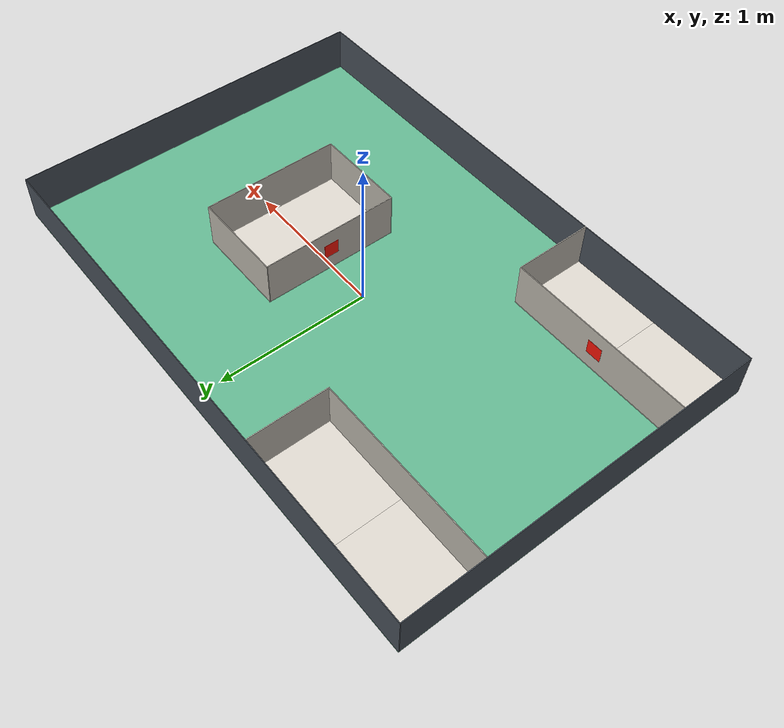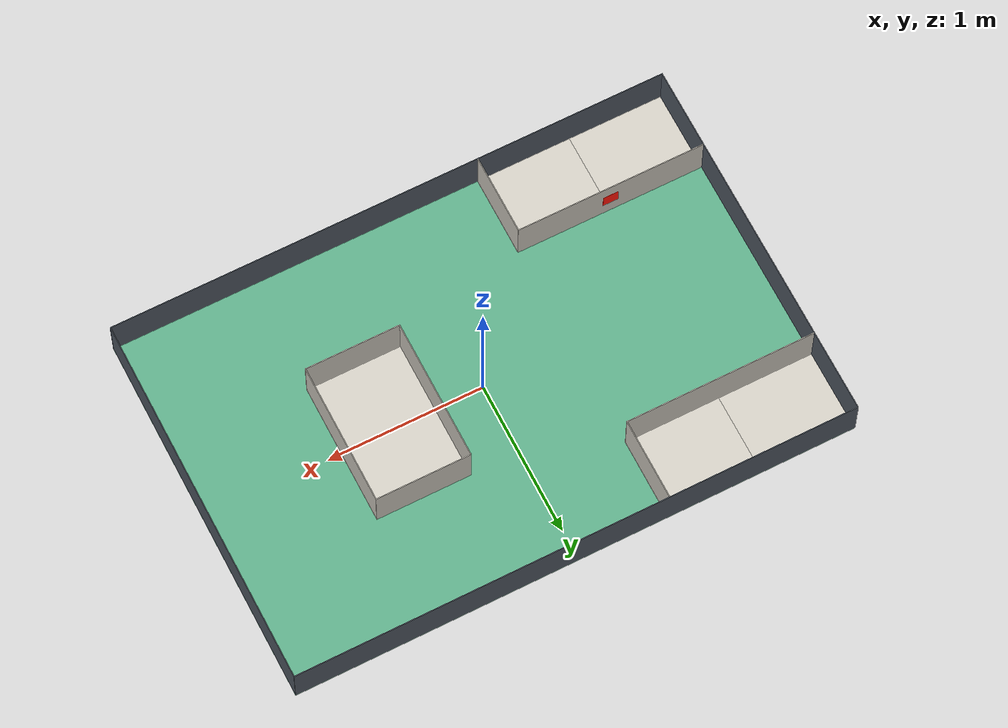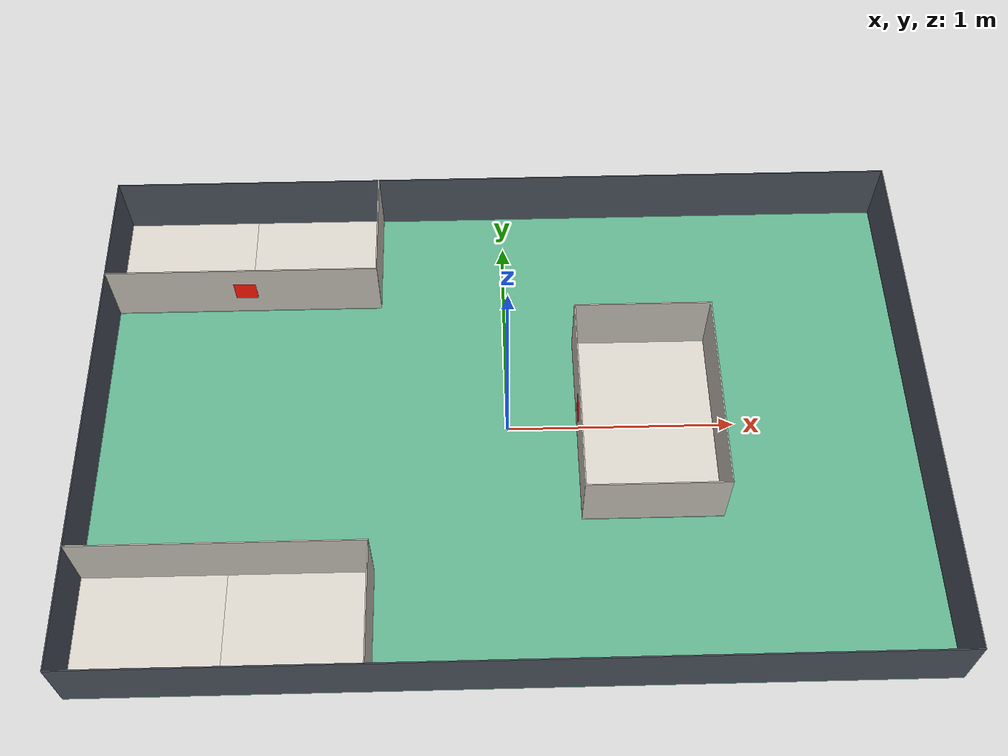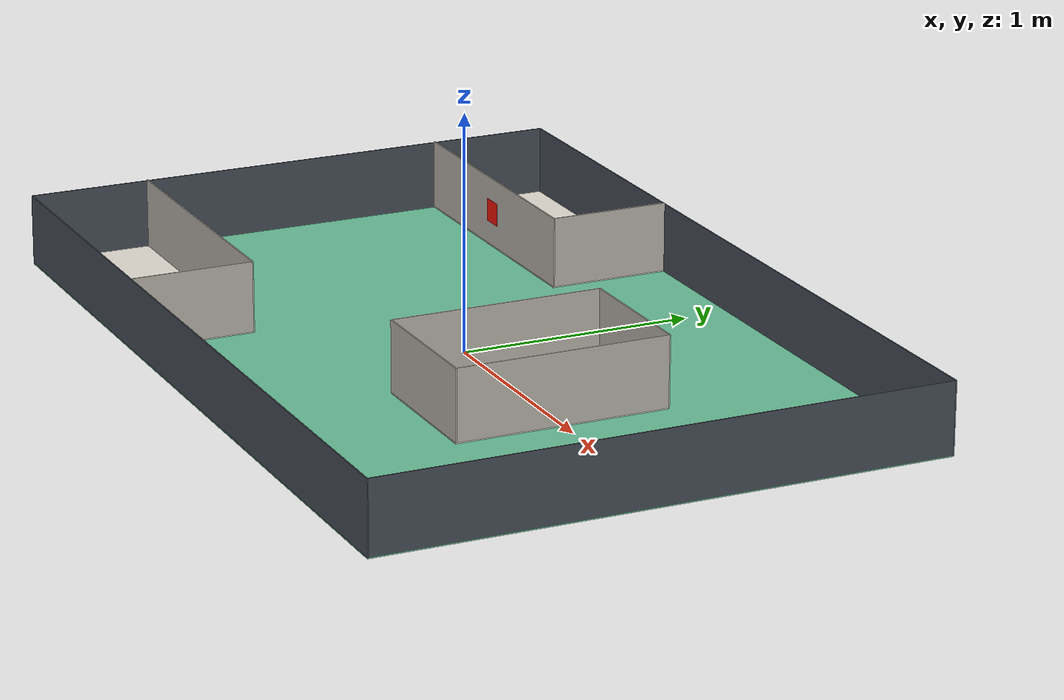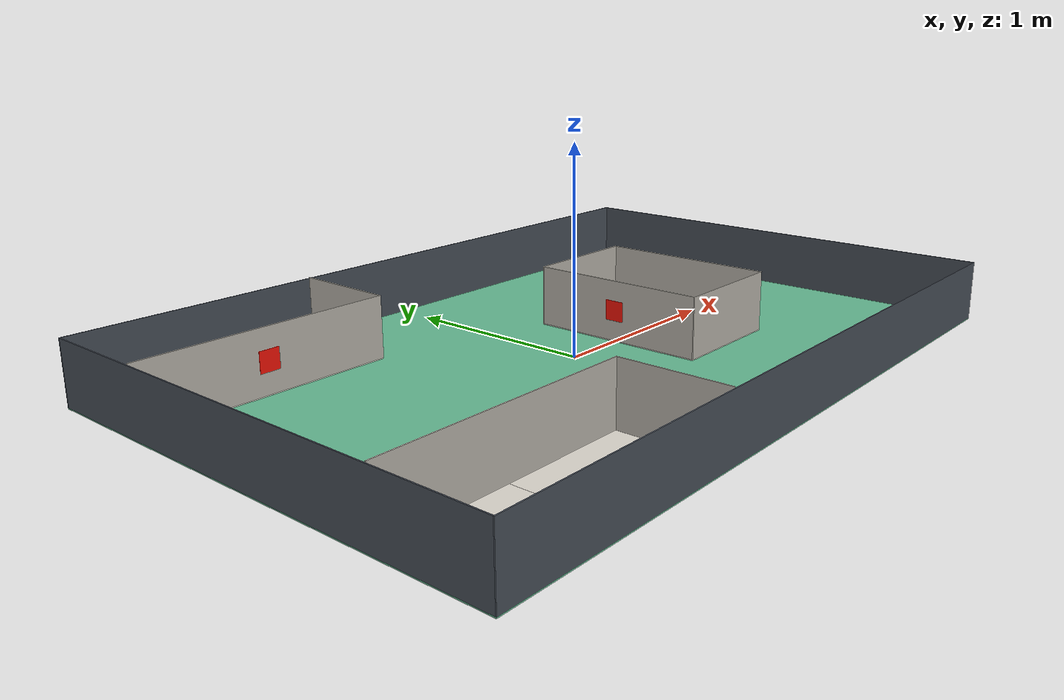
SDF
<?xml version='1.0' encoding='utf-8'?>
<sdf version="1.8">
  <world name="facility_map_with_heat_sources">
    <physics name="1ms" type="ignored">
      <max_step_size>0.001</max_step_size>
      <real_time_factor>1.0</real_time_factor>
    </physics>
    <scene>
      <ambient>0.55 0.55 0.55 1</ambient>
      <background>0.72 0.78 0.84 1</background>
      <shadows>true</shadows>
    </scene>
    <atmosphere type="adiabatic">
      <temperature>298.15</temperature>
      <temperature_gradient>-0.0065</temperature_gradient>
    </atmosphere>
    <plugin filename="gz-sim-physics-system" name="gz::sim::systems::Physics" />
    <plugin filename="gz-sim-user-commands-system" name="gz::sim::systems::UserCommands" />
    <plugin filename="gz-sim-scene-broadcaster-system" name="gz::sim::systems::SceneBroadcaster" />
    <plugin filename="gz-sim-sensors-system" name="gz::sim::systems::Sensors">
      <render_engine>ogre2</render_engine>
    </plugin>
    <light name="sun" type="directional">
      <pose>0 0 5 0 0 0</pose>
      <diffuse>0.9 0.9 0.9 1</diffuse>
      <specular>0.2 0.2 0.2 1</specular>
      <direction>-0.45 0.25 -0.86</direction>
      <cast_shadows>true</cast_shadows>
    </light>
    <model name="facility_layout_with_heat_sources">
      <static>true</static>
      <link name="layout_link">
        <collision name="floor_plate_collision">
          <pose>0.000000 0.000000 -0.002500 0 0 0</pose>
          <geometry>
            <box>
              <size>3.600000 2.400000 0.005000</size>
            </box>
          </geometry>
        </collision>
        <visual name="floor_plate_visual">
          <pose>0.000000 0.000000 -0.002500 0 0 0</pose>
          <geometry>
            <box>
              <size>3.600000 2.400000 0.005000</size>
            </box>
          </geometry>
          <material>
            <ambient>0.32 0.62 0.48 1</ambient>
            <diffuse>0.40 0.73 0.58 1</diffuse>
            <specular>0.08 0.08 0.08 1</specular>
          </material>
          <cast_shadows>true</cast_shadows>
        </visual>
        <collision name="floor_north_wall_collision">
          <pose>0.000000 1.197500 0.150000 0 0 0</pose>
          <geometry>
            <box>
              <size>3.600000 0.005000 0.300000</size>
            </box>
          </geometry>
        </collision>
        <visual name="floor_north_wall_visual">
          <pose>0.000000 1.197500 0.150000 0 0 0</pose>
          <geometry>
            <box>
              <size>3.600000 0.005000 0.300000</size>
            </box>
          </geometry>
          <material>
            <ambient>0.18 0.20 0.23 1</ambient>
            <diffuse>0.29 0.32 0.36 1</diffuse>
            <specular>0.08 0.08 0.08 1</specular>
          </material>
          <cast_shadows>true</cast_shadows>
        </visual>
        <collision name="floor_south_wall_collision">
          <pose>0.000000 -1.197500 0.150000 0 0 0</pose>
          <geometry>
            <box>
              <size>3.600000 0.005000 0.300000</size>
            </box>
          </geometry>
        </collision>
        <visual name="floor_south_wall_visual">
          <pose>0.000000 -1.197500 0.150000 0 0 0</pose>
          <geometry>
            <box>
              <size>3.600000 0.005000 0.300000</size>
            </box>
          </geometry>
          <material>
            <ambient>0.18 0.20 0.23 1</ambient>
            <diffuse>0.29 0.32 0.36 1</diffuse>
            <specular>0.08 0.08 0.08 1</specular>
          </material>
          <cast_shadows>true</cast_shadows>
        </visual>
        <collision name="floor_east_wall_collision">
          <pose>1.797500 0.000000 0.150000 0 0 0</pose>
          <geometry>
            <box>
              <size>0.005000 2.390000 0.300000</size>
            </box>
          </geometry>
        </collision>
        <visual name="floor_east_wall_visual">
          <pose>1.797500 0.000000 0.150000 0 0 0</pose>
          <geometry>
            <box>
              <size>0.005000 2.390000 0.300000</size>
            </box>
          </geometry>
          <material>
            <ambient>0.18 0.20 0.23 1</ambient>
            <diffuse>0.29 0.32 0.36 1</diffuse>
            <specular>0.08 0.08 0.08 1</specular>
          </material>
          <cast_shadows>true</cast_shadows>
        </visual>
        <collision name="floor_west_wall_collision">
          <pose>-1.797500 0.000000 0.150000 0 0 0</pose>
          <geometry>
            <box>
              <size>0.005000 2.390000 0.300000</size>
            </box>
          </geometry>
        </collision>
        <visual name="floor_west_wall_visual">
          <pose>-1.797500 0.000000 0.150000 0 0 0</pose>
          <geometry>
            <box>
              <size>0.005000 2.390000 0.300000</size>
            </box>
          </geometry>
          <material>
            <ambient>0.18 0.20 0.23 1</ambient>
            <diffuse>0.29 0.32 0.36 1</diffuse>
            <specular>0.08 0.08 0.08 1</specular>
          </material>
          <cast_shadows>true</cast_shadows>
        </visual>
        <collision name="equipment_1_board_2_1_collision">
          <pose>-1.490000 0.935000 0.002500 0 0 0</pose>
          <geometry>
            <box>
              <size>0.610000 0.520000 0.005000</size>
            </box>
          </geometry>
        </collision>
        <visual name="equipment_1_board_2_1_visual">
          <pose>-1.490000 0.935000 0.002500 0 0 0</pose>
          <geometry>
            <box>
              <size>0.610000 0.520000 0.005000</size>
            </box>
          </geometry>
          <material>
            <ambient>0.72 0.70 0.66 1</ambient>
            <diffuse>0.88 0.86 0.82 1</diffuse>
            <specular>0.08 0.08 0.08 1</specular>
          </material>
          <cast_shadows>true</cast_shadows>
        </visual>
        <collision name="equipment_1_board_2_2_collision">
          <pose>-0.880000 0.935000 0.002500 0 0 0</pose>
          <geometry>
            <box>
              <size>0.610000 0.520000 0.005000</size>
            </box>
          </geometry>
        </collision>
        <visual name="equipment_1_board_2_2_visual">
          <pose>-0.880000 0.935000 0.002500 0 0 0</pose>
          <geometry>
            <box>
              <size>0.610000 0.520000 0.005000</size>
            </box>
          </geometry>
          <material>
            <ambient>0.72 0.70 0.66 1</ambient>
            <diffuse>0.88 0.86 0.82 1</diffuse>
            <specular>0.08 0.08 0.08 1</specular>
          </material>
          <cast_shadows>true</cast_shadows>
        </visual>
        <collision name="equipment_1_south_wall_collision">
          <pose>-1.185000 0.677500 0.155000 0 0 0</pose>
          <geometry>
            <box>
              <size>1.220000 0.005000 0.300000</size>
            </box>
          </geometry>
        </collision>
        <visual name="equipment_1_south_wall_visual">
          <pose>-1.185000 0.677500 0.155000 0 0 0</pose>
          <geometry>
            <box>
              <size>1.220000 0.005000 0.300000</size>
            </box>
          </geometry>
          <material>
            <ambient>0.56 0.55 0.52 1</ambient>
            <diffuse>0.76 0.74 0.70 1</diffuse>
            <specular>0.08 0.08 0.08 1</specular>
          </material>
          <cast_shadows>true</cast_shadows>
        </visual>
        <collision name="equipment_1_east_wall_collision">
          <pose>-0.577500 0.937500 0.155000 0 0 0</pose>
          <geometry>
            <box>
              <size>0.005000 0.515000 0.300000</size>
            </box>
          </geometry>
        </collision>
        <visual name="equipment_1_east_wall_visual">
          <pose>-0.577500 0.937500 0.155000 0 0 0</pose>
          <geometry>
            <box>
              <size>0.005000 0.515000 0.300000</size>
            </box>
          </geometry>
          <material>
            <ambient>0.56 0.55 0.52 1</ambient>
            <diffuse>0.76 0.74 0.70 1</diffuse>
            <specular>0.08 0.08 0.08 1</specular>
          </material>
          <cast_shadows>true</cast_shadows>
        </visual>
        <collision name="equipment_2_board_2_1_collision">
          <pose>-1.490000 -0.935000 0.002500 0 0 0</pose>
          <geometry>
            <box>
              <size>0.610000 0.520000 0.005000</size>
            </box>
          </geometry>
        </collision>
        <visual name="equipment_2_board_2_1_visual">
          <pose>-1.490000 -0.935000 0.002500 0 0 0</pose>
          <geometry>
            <box>
              <size>0.610000 0.520000 0.005000</size>
            </box>
          </geometry>
          <material>
            <ambient>0.72 0.70 0.66 1</ambient>
            <diffuse>0.88 0.86 0.82 1</diffuse>
            <specular>0.08 0.08 0.08 1</specular>
          </material>
          <cast_shadows>true</cast_shadows>
        </visual>
        <collision name="equipment_2_board_2_2_collision">
          <pose>-0.880000 -0.935000 0.002500 0 0 0</pose>
          <geometry>
            <box>
              <size>0.610000 0.520000 0.005000</size>
            </box>
          </geometry>
        </collision>
        <visual name="equipment_2_board_2_2_visual">
          <pose>-0.880000 -0.935000 0.002500 0 0 0</pose>
          <geometry>
            <box>
              <size>0.610000 0.520000 0.005000</size>
            </box>
          </geometry>
          <material>
            <ambient>0.72 0.70 0.66 1</ambient>
            <diffuse>0.88 0.86 0.82 1</diffuse>
            <specular>0.08 0.08 0.08 1</specular>
          </material>
          <cast_shadows>true</cast_shadows>
        </visual>
        <collision name="equipment_2_north_wall_collision">
          <pose>-1.185000 -0.677500 0.155000 0 0 0</pose>
          <geometry>
            <box>
              <size>1.220000 0.005000 0.300000</size>
            </box>
          </geometry>
        </collision>
        <visual name="equipment_2_north_wall_visual">
          <pose>-1.185000 -0.677500 0.155000 0 0 0</pose>
          <geometry>
            <box>
              <size>1.220000 0.005000 0.300000</size>
            </box>
          </geometry>
          <material>
            <ambient>0.56 0.55 0.52 1</ambient>
            <diffuse>0.76 0.74 0.70 1</diffuse>
            <specular>0.08 0.08 0.08 1</specular>
          </material>
          <cast_shadows>true</cast_shadows>
        </visual>
        <collision name="equipment_2_east_wall_collision">
          <pose>-0.577500 -0.937500 0.155000 0 0 0</pose>
          <geometry>
            <box>
              <size>0.005000 0.515000 0.300000</size>
            </box>
          </geometry>
        </collision>
        <visual name="equipment_2_east_wall_visual">
          <pose>-0.577500 -0.937500 0.155000 0 0 0</pose>
          <geometry>
            <box>
              <size>0.005000 0.515000 0.300000</size>
            </box>
          </geometry>
          <material>
            <ambient>0.56 0.55 0.52 1</ambient>
            <diffuse>0.76 0.74 0.70 1</diffuse>
            <specular>0.08 0.08 0.08 1</specular>
          </material>
          <cast_shadows>true</cast_shadows>
        </visual>
        <collision name="equipment_3_board_1_collision">
          <pose>0.610000 0.000000 0.002500 0 0 0</pose>
          <geometry>
            <box>
              <size>0.610000 0.910000 0.005000</size>
            </box>
          </geometry>
        </collision>
        <visual name="equipment_3_board_1_visual">
          <pose>0.610000 0.000000 0.002500 0 0 0</pose>
          <geometry>
            <box>
              <size>0.610000 0.910000 0.005000</size>
            </box>
          </geometry>
          <material>
            <ambient>0.72 0.70 0.66 1</ambient>
            <diffuse>0.88 0.86 0.82 1</diffuse>
            <specular>0.08 0.08 0.08 1</specular>
          </material>
          <cast_shadows>true</cast_shadows>
        </visual>
        <collision name="equipment_3_north_wall_collision">
          <pose>0.610000 0.452500 0.155000 0 0 0</pose>
          <geometry>
            <box>
              <size>0.610000 0.005000 0.300000</size>
            </box>
          </geometry>
        </collision>
        <visual name="equipment_3_north_wall_visual">
          <pose>0.610000 0.452500 0.155000 0 0 0</pose>
          <geometry>
            <box>
              <size>0.610000 0.005000 0.300000</size>
            </box>
          </geometry>
          <material>
            <ambient>0.56 0.55 0.52 1</ambient>
            <diffuse>0.76 0.74 0.70 1</diffuse>
            <specular>0.08 0.08 0.08 1</specular>
          </material>
          <cast_shadows>true</cast_shadows>
        </visual>
        <collision name="equipment_3_south_wall_collision">
          <pose>0.610000 -0.452500 0.155000 0 0 0</pose>
          <geometry>
            <box>
              <size>0.610000 0.005000 0.300000</size>
            </box>
          </geometry>
        </collision>
        <visual name="equipment_3_south_wall_visual">
          <pose>0.610000 -0.452500 0.155000 0 0 0</pose>
          <geometry>
            <box>
              <size>0.610000 0.005000 0.300000</size>
            </box>
          </geometry>
          <material>
            <ambient>0.56 0.55 0.52 1</ambient>
            <diffuse>0.76 0.74 0.70 1</diffuse>
            <specular>0.08 0.08 0.08 1</specular>
          </material>
          <cast_shadows>true</cast_shadows>
        </visual>
        <collision name="equipment_3_east_wall_collision">
          <pose>0.912500 0.000000 0.155000 0 0 0</pose>
          <geometry>
            <box>
              <size>0.005000 0.900000 0.300000</size>
            </box>
          </geometry>
        </collision>
        <visual name="equipment_3_east_wall_visual">
          <pose>0.912500 0.000000 0.155000 0 0 0</pose>
          <geometry>
            <box>
              <size>0.005000 0.900000 0.300000</size>
            </box>
          </geometry>
          <material>
            <ambient>0.56 0.55 0.52 1</ambient>
            <diffuse>0.76 0.74 0.70 1</diffuse>
            <specular>0.08 0.08 0.08 1</specular>
          </material>
          <cast_shadows>true</cast_shadows>
        </visual>
        <collision name="equipment_3_west_wall_collision">
          <pose>0.307500 0.000000 0.155000 0 0 0</pose>
          <geometry>
            <box>
              <size>0.005000 0.900000 0.300000</size>
            </box>
          </geometry>
        </collision>
        <visual name="equipment_3_west_wall_visual">
          <pose>0.307500 0.000000 0.155000 0 0 0</pose>
          <geometry>
            <box>
              <size>0.005000 0.900000 0.300000</size>
            </box>
          </geometry>
          <material>
            <ambient>0.56 0.55 0.52 1</ambient>
            <diffuse>0.76 0.74 0.70 1</diffuse>
            <specular>0.08 0.08 0.08 1</specular>
          </material>
          <cast_shadows>true</cast_shadows>
        </visual>
        <visual name="equipment_1_south_heat_source_visual">
          <pose>-1.185000 0.674500 0.155000 0 0 0</pose>
          <geometry>
            <box>
              <size>0.100000 0.001000 0.100000</size>
            </box>
          </geometry>
          <material>
            <ambient>0.72 0.03 0.02 1</ambient>
            <diffuse>1.00 0.08 0.03 1</diffuse>
            <specular>0.20 0.20 0.20 1</specular>
          </material>
          <cast_shadows>false</cast_shadows>
          <plugin filename="gz-sim-thermal-system" name="gz::sim::systems::Thermal">
            <temperature>333.15</temperature>
          </plugin>
        </visual>
        <visual name="equipment_2_north_heat_source_visual">
          <pose>-1.185000 -0.674500 0.155000 0 0 0</pose>
          <geometry>
            <box>
              <size>0.100000 0.001000 0.100000</size>
            </box>
          </geometry>
          <material>
            <ambient>0.72 0.03 0.02 1</ambient>
            <diffuse>1.00 0.08 0.03 1</diffuse>
            <specular>0.20 0.20 0.20 1</specular>
          </material>
          <cast_shadows>false</cast_shadows>
          <plugin filename="gz-sim-thermal-system" name="gz::sim::systems::Thermal">
            <temperature>333.15</temperature>
          </plugin>
        </visual>
        <visual name="equipment_3_west_heat_source_visual">
          <pose>0.304500 0.000000 0.155000 0 0 0</pose>
          <geometry>
            <box>
              <size>0.001000 0.100000 0.100000</size>
            </box>
          </geometry>
          <material>
            <ambient>0.72 0.03 0.02 1</ambient>
            <diffuse>1.00 0.08 0.03 1</diffuse>
            <specular>0.20 0.20 0.20 1</specular>
          </material>
          <cast_shadows>false</cast_shadows>
          <plugin filename="gz-sim-thermal-system" name="gz::sim::systems::Thermal">
            <temperature>333.15</temperature>
          </plugin>
        </visual>
      </link>
    </model>
  </world>
</sdf>
